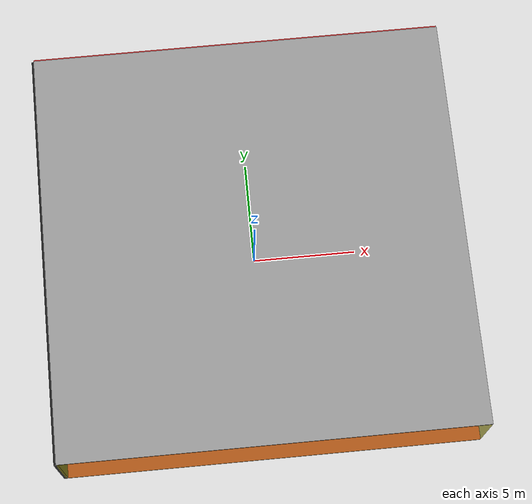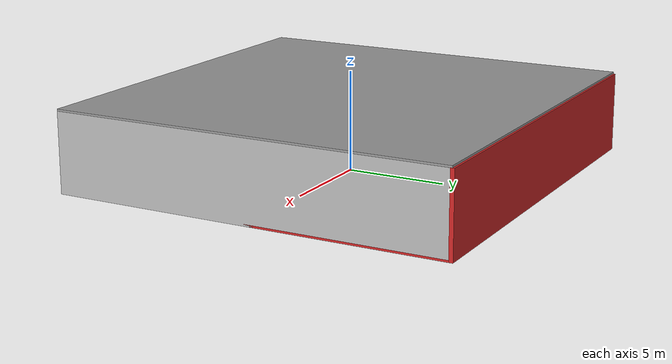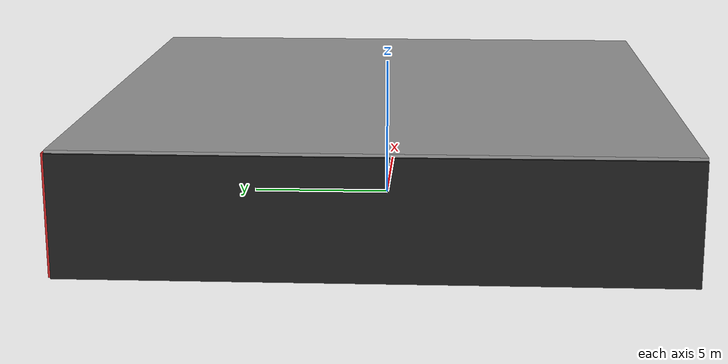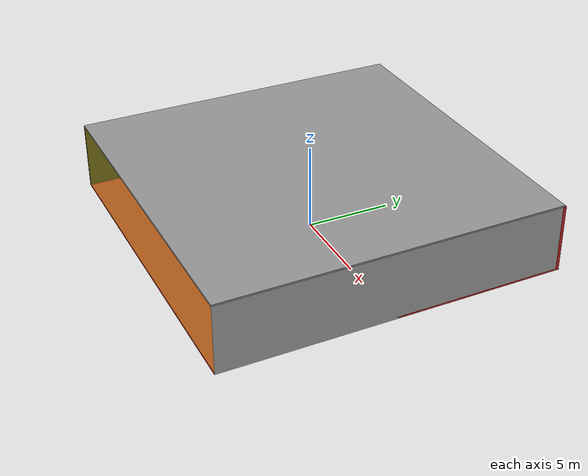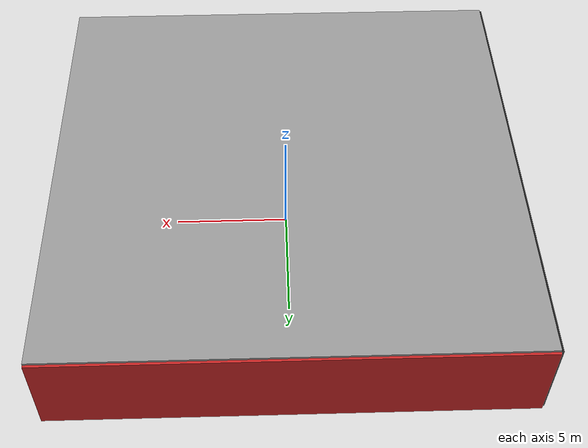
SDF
<sdf version="1.4">
 <world name="default">
  <physics type="ode">
   <max_step_size>0.001</max_step_size>
   <real_time_factor>1</real_time_factor>
   <real_time_update_rate>1000</real_time_update_rate>
   <gravity>0 0 -9.8</gravity>
  </physics>
  <scene><ambient>0.4 0.4 0.4 1</ambient><background>0.7 0.7 0.7 1</background><shadows>1</shadows></scene>
  <model name="Surrounding">
   <static>1</static>
   <link name="Ceiling">
    <collision name="Ceiling_Collision"><geometry><box><size>20 20 0.1</size></box></geometry></collision>
    <visual name="Ceiling_Visual">
     <geometry><box><size>20 20 0.1</size></box></geometry>
     <material>
      <script><uri>file://media/materials/scripts/gazebo.material</uri><name>Gazebo/GreyGradientSky</name></script>
     </material>
    </visual>
    <pose>0 0 4.05 0 0 0</pose>
   </link>
   <link name="Wall_South">
    <collision name="Wall_South_Collision">
     <geometry><box><size>20 0 4</size></box></geometry>
     <pose>0 0 2 0 -0 0</pose>
    </collision>
    <visual name="Wall_South_Visual">
     <pose>0 0 2 0 -0 0</pose>
     <geometry><box><size>20 0 4</size></box></geometry>
     <material>
      <script>
       <uri>file://media/materials/scripts/gazebo.material</uri>
       <name>Gazebo/YellowTransparent</name>
      </script>
     </material>
    </visual>
    <velocity_decay><linear>0</linear><angular>0</angular></velocity_decay>
    <pose>0 -10 0 0 -0 0</pose>
   </link>
   <link name="Wall_East">
    <collision name="Wall_21_Collision">
     <geometry><box><size>20 0 4</size></box></geometry>
     <pose>0 0 2 0 -0 0</pose>
    </collision>
    <visual name="Wall_21_Visual">
     <pose>0 0 2 0 -0 0</pose>
     <geometry><box><size>20 0 4</size></box></geometry>
     <material>
      <script><uri>file://media/materials/scripts/gazebo.material</uri><name>Gazebo/CloudySky</name></script>
     </material>
    </visual>
    <velocity_decay><linear>0</linear><angular>0</angular></velocity_decay>
    <pose>10 0 0 0 -0 1.5708</pose>
   </link>
   <link name="Wall_North">
    <collision name="Wall_22_Collision">
     <geometry><box><size>20 0.2 4</size></box></geometry>
     <pose>0 0 2 0 -0 0</pose>
    </collision>
    <visual name="Wall_22_Visual">
     <pose>0 0 2 0 -0 0</pose>
     <geometry><box><size>20 0.2 4</size></box></geometry>
     <material>
      <script><uri>file://media/materials/scripts/gazebo.material</uri><name>Gazebo/RedGlow</name></script>
     </material>
    </visual>
    <velocity_decay><linear>0</linear><angular>0</angular></velocity_decay>
    <pose>0 10 0 0 -0 0</pose>
   </link>
   <link name="Wall_West">
    <collision name="Wall_23_Collision">
     <geometry><box><size>20 0.2 4</size></box></geometry>
     <pose>0 0 2 0 -0 0</pose>
    </collision>
    <visual name="Wall_23_Visual">
     <pose>0 0 2 0 -0 0</pose>
     <geometry><box><size>20 0.2 4</size></box></geometry>
     <material>
      <script><uri>file://media/materials/scripts/gazebo.material</uri><name>Gazebo/Black</name></script>
     </material>
    </visual>
    <velocity_decay><linear>0</linear><angular>0</angular></velocity_decay>
    <pose>-10 0 0 0 0 -1.5708</pose>
   </link>
   <link name="Ground_link">
    <collision name="collision">
     <pose>0 0 .05 0 -0 0</pose>
     <geometry><box><size>20 20 0.1</size></box></geometry>
    </collision>
    <visual name="visual">
     <pose>0 0 .05 0 -0 0</pose>
     <geometry><box><size>20 20 0.1</size></box></geometry>
     <material>
      <script><uri>file://media/materials/scripts/gazebo.material</uri><name>Gazebo/Red</name></script>
     </material>
    </visual>
   </link>
   <static>1</static>
  </model>
  <spherical_coordinates>
   <surface_model>EARTH_WGS84</surface_model>
   <latitude_deg>0</latitude_deg>
   <longitude_deg>0</longitude_deg>
   <elevation>0</elevation>
   <heading_deg>0</heading_deg>
  </spherical_coordinates>
  <light name="lightball_0" type="diffuse">
   <diffuse>0.8 0.8 0.8 1</diffuse>
   <specular>0.2 0.2 0.2 1</specular>
   <attenuation>
    <range>100</range>
    <constant>0.7</constant>
    <linear>0.01</linear>
    <quadratic>0.001</quadratic>
   </attenuation>
   <direction>-0.5 0.1 -0.9</direction>
   <pose>2.09329482819 -5.50825630021 3.48540066355 0 0 0</pose>
  </light>
  <light name="lightball_1" type="diffuse">
   <diffuse>0.8 0.8 0.8 1</diffuse>
   <specular>0.2 0.2 0.2 1</specular>
   <attenuation>
    <range>100</range>
    <constant>0.7</constant>
    <linear>0.01</linear>
    <quadratic>0.001</quadratic>
   </attenuation>
   <direction>-0.5 0.1 -0.9</direction>
   <pose>-8.44081270369 -1.31097549499 1.2874413233 0 0 0</pose>
  </light>
  <light name="lightball_2" type="diffuse">
   <diffuse>0.8 0.8 0.8 1</diffuse>
   <specular>0.2 0.2 0.2 1</specular>
   <attenuation>
    <range>100</range>
    <constant>0.7</constant>
    <linear>0.01</linear>
    <quadratic>0.001</quadratic>
   </attenuation>
   <direction>-0.5 0.1 -0.9</direction>
   <pose>-0.110362809247 7.75062843336 3.13044619209 0 0 0</pose>
  </light>
  <light name="lightball_3" type="diffuse">
   <diffuse>0.8 0.8 0.8 1</diffuse>
   <specular>0.2 0.2 0.2 1</specular>
   <attenuation>
    <range>100</range>
    <constant>0.7</constant>
    <linear>0.01</linear>
    <quadratic>0.001</quadratic>
   </attenuation>
   <direction>-0.5 0.1 -0.9</direction>
   <pose>2.38581280512 -6.40213835536 2.10666355067 0 0 0</pose>
  </light>
  <light name="lightball_4" type="diffuse">
   <diffuse>0.8 0.8 0.8 1</diffuse>
   <specular>0.2 0.2 0.2 1</specular>
   <attenuation>
    <range>100</range>
    <constant>0.7</constant>
    <linear>0.01</linear>
    <quadratic>0.001</quadratic>
   </attenuation>
   <direction>-0.5 0.1 -0.9</direction>
   <pose>-7.12649426062 -6.73448322423 0.626621973959 0 0 0</pose>
  </light>
  <light name="lightball_5" type="diffuse">
   <diffuse>0.8 0.8 0.8 1</diffuse>
   <specular>0.2 0.2 0.2 1</specular>
   <attenuation>
    <range>100</range>
    <constant>0.7</constant>
    <linear>0.01</linear>
    <quadratic>0.001</quadratic>
   </attenuation>
   <direction>-0.5 0.1 -0.9</direction>
   <pose>-9.5374408166 4.59025942375 2.10147927414 0 0 0</pose>
  </light>
  <light name="lightball_6" type="diffuse">
   <diffuse>0.8 0.8 0.8 1</diffuse>
   <specular>0.2 0.2 0.2 1</specular>
   <attenuation>
    <range>100</range>
    <constant>0.7</constant>
    <linear>0.01</linear>
    <quadratic>0.001</quadratic>
   </attenuation>
   <direction>-0.5 0.1 -0.9</direction>
   <pose>0.305844755947 7.60674928865 0.606899641117 0 0 0</pose>
  </light>
  <light name="lightball_7" type="diffuse">
   <diffuse>0.8 0.8 0.8 1</diffuse>
   <specular>0.2 0.2 0.2 1</specular>
   <attenuation>
    <range>100</range>
    <constant>0.7</constant>
    <linear>0.01</linear>
    <quadratic>0.001</quadratic>
   </attenuation>
   <direction>-0.5 0.1 -0.9</direction>
   <pose>-5.06849535416 -8.67765503282 1.93655619601 0 0 0</pose>
  </light>
  <light name="lightball_8" type="diffuse">
   <diffuse>0.8 0.8 0.8 1</diffuse>
   <specular>0.2 0.2 0.2 1</specular>
   <attenuation>
    <range>100</range>
    <constant>0.7</constant>
    <linear>0.01</linear>
    <quadratic>0.001</quadratic>
   </attenuation>
   <direction>-0.5 0.1 -0.9</direction>
   <pose>2.38430806443 2.25820232292 1.06095388367 0 0 0</pose>
  </light>
  <light name="lightball_9" type="diffuse">
   <diffuse>0.8 0.8 0.8 1</diffuse>
   <specular>0.2 0.2 0.2 1</specular>
   <attenuation>
    <range>100</range>
    <constant>0.7</constant>
    <linear>0.01</linear>
    <quadratic>0.001</quadratic>
   </attenuation>
   <direction>-0.5 0.1 -0.9</direction>
   <pose>6.50091157703 6.56041804485 3.25282820037 0 0 0</pose>
  </light>
  <include><uri>model://cabinet</uri><pose>5.09244627839 -2.4258549111 0 0 0 1.89625137009</pose></include>
 </world>
</sdf>

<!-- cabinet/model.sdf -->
<sdf version="1.5">
  <model name="cabinet">
    <static>true</static>
    <link name="cabinet_bottom_plate">
      <inertial>
        <pose>0 0 -1 0 0 0</pose>
        <inertia>
          <ixx>2.050000</ixx>
          <ixy>0</ixy>
          <ixz>0</ixz>
          <iyy>2.050000</iyy>
          <iyz>0</iyz>
          <izz>2.050000</izz>
        </inertia>
        <mass>25.000000</mass>
      </inertial>
      <collision name="cabinet_bottom_plate_geom">
        <pose>0 0 0.010000 0 0 0</pose>
        <geometry>
          <box>
            <size>0.450000 0.450000 0.020000</size>
          </box>
        </geometry>
      </collision>
      <visual name="cabinet_bottom_plate_geom_visual">
        <pose>0 0 0.010000 0 0 0</pose>
        <geometry>
          <box>
            <size>0.450000 0.450000 0.020000</size>
          </box>
        </geometry>
        <material>
          <script>
            <uri>model://media/materials/scripts/gazebo.material</uri>
            <name>Gazebo/Wood</name>
          </script>
        </material>
      </visual>
      <collision name="cabinet_bottom_plate_geom_cabinet_back_plate">
        <pose>0.235000 0 0.510000 0 0 0</pose>
        <geometry>
          <box>
            <size>0.020000 0.450000 1.020000</size>
          </box>
        </geometry>
      </collision>
      <visual name="cabinet_bottom_plate_geom_cabinet_back_plate_visual">
        <pose>0.235000 0 0.510000 0 0 0</pose>
        <geometry>
          <box>
            <size>0.020000 0.450000 1.020000</size>
          </box>
        </geometry>
        <material>
          <script>
            <uri>model://media/materials/scripts/gazebo.material</uri>
            <name>Gazebo/Wood</name>
          </script>
        </material>
      </visual>
      <collision name="cabinet_bottom_plate_geom_cabinet_left_plate">
        <pose>0 0.235000 0.510000 0 0 0</pose>
        <geometry>
          <box>
            <size>0.450000 0.020000 1.020000</size>
          </box>
        </geometry>
      </collision>
      <visual name="cabinet_bottom_plate_geom_cabinet_left_plate_visual">
        <pose>0 0.235000 0.510000 0 0 0</pose>
        <geometry>
          <box>
            <size>0.450000 0.020000 1.020000</size>
          </box>
        </geometry>
        <material>
          <script>
            <uri>model://media/materials/scripts/gazebo.material</uri>
            <name>Gazebo/Wood</name>
          </script>
        </material>
      </visual>
      <collision name="cabinet_bottom_plate_geom_cabinet_middle_plate">
        <pose>0 0 0.510000 0 0 0</pose>
        <geometry>
          <box>
            <size>0.450000 0.450000 0.020000</size>
          </box>
        </geometry>
      </collision>
      <visual name="cabinet_bottom_plate_geom_cabinet_middle_plate_visual">
        <pose>0 0 0.510000 0 0 0</pose>
        <geometry>
          <box>
            <size>0.450000 0.450000 0.020000</size>
          </box>
        </geometry>
        <material>
          <script>
            <uri>model://media/materials/scripts/gazebo.material</uri>
            <name>Gazebo/Wood</name>
          </script>
        </material>
      </visual>
      <collision name="cabinet_bottom_plate_geom_cabinet_right_plate">
        <pose>0 -0.235000 0.510000 0 0 0</pose>
        <geometry>
          <box>
            <size>0.450000 0.020000 1.020000</size>
          </box>
        </geometry>
      </collision>
      <visual name="cabinet_bottom_plate_geom_cabinet_right_plate_visual">
        <pose>0 -0.235000 0.510000 0 0 0</pose>
        <geometry>
          <box>
            <size>0.450000 0.020000 1.020000</size>
          </box>
        </geometry>
        <material>
          <script>
            <uri>model://media/materials/scripts/gazebo.material</uri>
            <name>Gazebo/Wood</name>
          </script>
        </material>
      </visual>
      <collision name="cabinet_bottom_plate_geom_cabinet_top_plate">
        <pose>0 0 1.010000 0 0 0</pose>
        <geometry>
          <box>
            <size>0.450000 0.450000 0.020000</size>
          </box>
        </geometry>
      </collision>
      <visual name="cabinet_bottom_plate_geom_cabinet_top_plate_visual">
        <pose>0 0 1.010000 0 0 0</pose>
        <geometry>
          <box>
            <size>0.450000 0.450000 0.020000</size>
          </box>
        </geometry>
        <material>
          <script>
            <uri>model://media/materials/scripts/gazebo.material</uri>
            <name>Gazebo/Wood</name>
          </script>
        </material>
      </visual>
    </link>
  </model>
</sdf>
